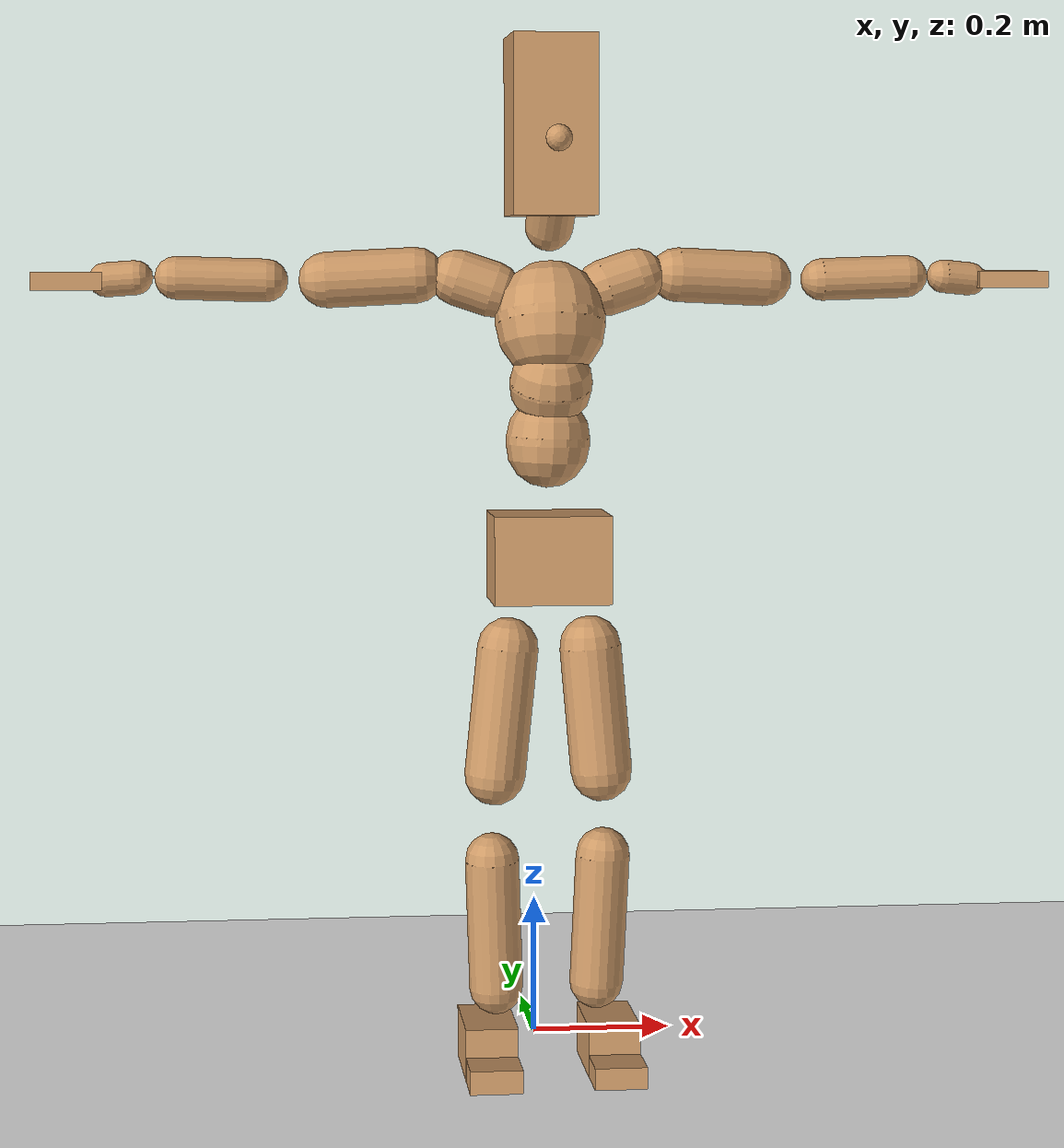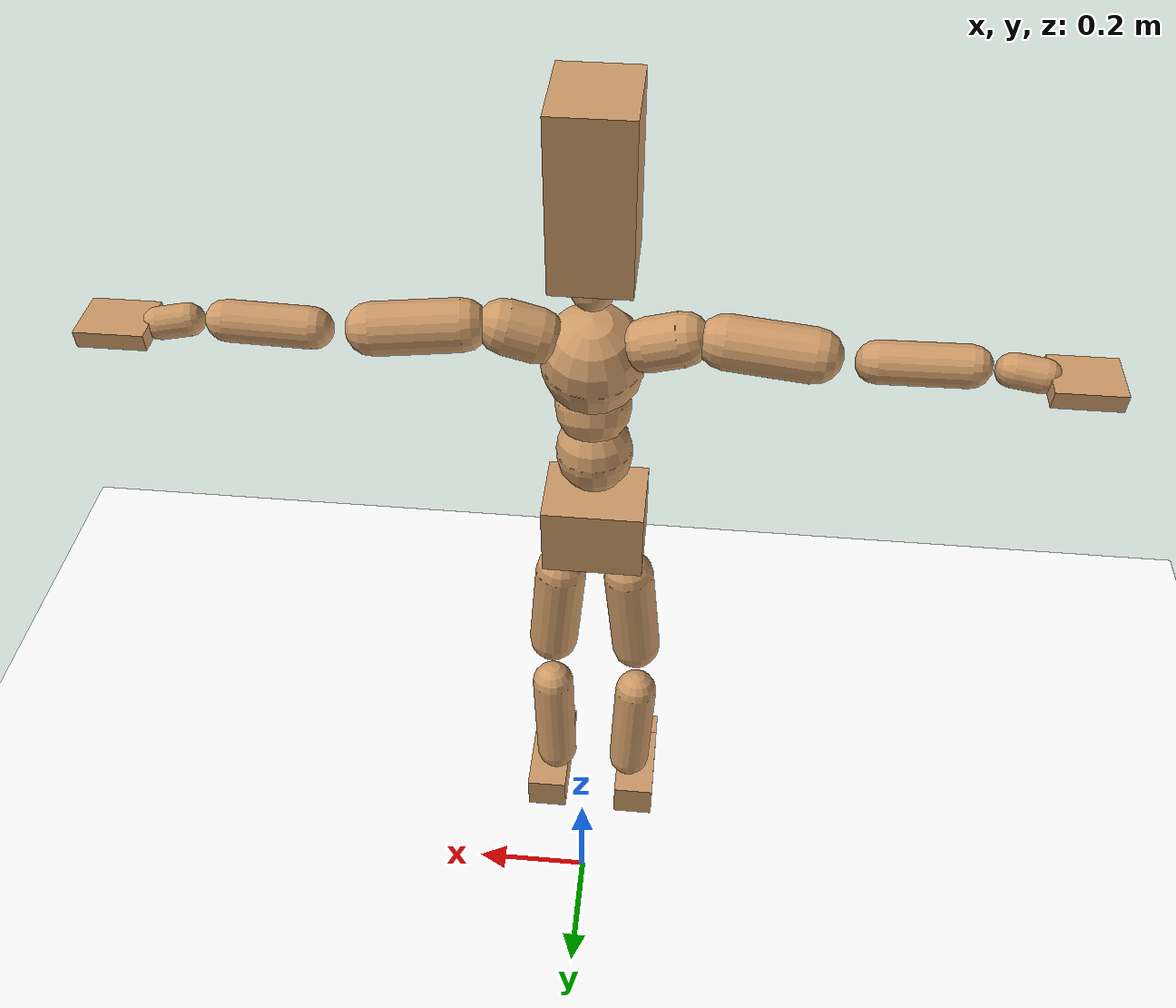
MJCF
<mujoco model="humanoid">
  <option integrator="implicitfast" />

  <visual>
    <global offwidth="1280" offheight="960" />
    <headlight active="1" ambient="0.34 0.34 0.34" diffuse="0.5 0.5 0.5" />
  </visual>

  <default>
    <joint damping="2" stiffness="2" armature="0.01" limited="true" solimplimit="0 .99 .01" />
    <geom condim="1" friction="0.7 0.005 0.0001" solimp=".99 .99 .003" solref="0.015 1" margin="0.001" rgba="0.8 0.6 .4 1" />
    <default class="smplcontact">
      <geom condim="3" friction="1. 0.005 0.0001" solref="0.015 1" solimp="0.98 0.98 0.001" priority="1" />
    </default>
    <default class="stiff_medium">
      <joint stiffness="10" />
    </default>
    <default class="stiff_medium_higher">
      <joint stiffness="50" />
    </default>
    <default class="stiff_high">
      <joint stiffness="100" />
    </default>
  </default>

  <asset>
    <texture type="skybox" builtin="gradient" rgb1="0.99 0.99 0.99" rgb2="0.608 0.828 0.892" width="100" />
    <texture builtin="flat" height="1278" mark="cross" markrgb="1 1 1" name="texgeom" random="0.01" rgb1="0.8 0.6 0.4" rgb2="0.8 0.6 0.4" type="cube" width="127" />
    <texture name="texplane" type="2d" builtin="checker" markrgb="1 1 1" rgb1="0.756 0.772 0.76" rgb2="0.6 0.6 0.6" width="100" height="100" />
    <material name="MatPlane" reflectance="0.5" texture="texplane" texrepeat="1 1" texuniform="true" />
    <material name="geom" texture="texgeom" texuniform="true" />
  </asset>

  <worldbody>
    <light name="tracking_light" pos="0 0 7" dir="0 0 -1" directional="true" cutoff="100" exponent="1" diffuse="1 1 1" specular="0.1 0.1 0.1" mode="trackcom" />
    <camera name="back" pos="0 3 2.4" xyaxes="-1 0 0 0 -1 2" mode="trackcom" />
    <camera name="side" pos="-3 0 2.4" xyaxes="0 -1 0 1 0 2" mode="trackcom" />
    <camera name="front_side" pos="-2.8 -2.8 0.8" xyaxes="0.5 -0.5 0 0.1 0.1 1" mode="trackcom" />
    <geom condim="3" name="floor" pos="0 0 0" rgba="1 1 1 1" size="100 100 .2" type="plane" material="MatPlane" />
    <body name="Pelvis" pos="-0.0018 -0.2233 0.736156" euler="90 0 0">
      <site name="Pelvis" size="0.01" />
      <freejoint name="Pelvis" />
      <geom type="box" pos="0 -0.0102491 -0.00418165" size="0.0812761 0.0611555 0.0631049" quat="1.0000 0.0000 0.0000 0.0000" density="3165.830099" name="Pelvis" />
      <body name="L_Hip" pos="0.0528409 -0.0774185 -0.00517004">
        <joint name="L_Hip_x" type="hinge" pos="0 0 0" axis="1 0 0" stiffness="10" range="-160.0 22.92" class="stiff_medium" damping="15" />
        <joint name="L_Hip_y" type="hinge" pos="0 0 0" axis="0 1 0" stiffness="10" range="-70.0 70.0" class="stiff_medium" damping="10" />
        <joint name="L_Hip_z" type="hinge" pos="0 0 0" axis="0 0 1" stiffness="10" range="-28.65 90.0" class="stiff_medium" damping="10" />
        <geom type="capsule" density="2040.816327" fromto="0.00538281 -0.0585721 -0.000702801 0.0213924 -0.234443 -0.00281138" size="0.0431115" name="L_Hip" />
        <body name="L_Knee" pos="0.0267752 -0.293015 -0.00351418">
          <joint name="L_Knee_x" type="hinge" pos="0 0 0" axis="1 0 0" range="-5.16 171.89" damping="8" />
          <joint name="L_Knee_y" type="hinge" pos="0 0 0" axis="0 1 0" range="-4.58 6.88" damping="8" />
          <joint name="L_Knee_z" type="hinge" pos="0 0 0" axis="0 0 1" range="-6.88 4.58" damping="8" />
          <geom type="capsule" density="1234.567901" fromto="-0.00211122 -0.0621633 -0.00679956 -0.00851504 -0.248655 -0.0273386" size="0.0379241" name="L_Knee" />
          <body name="L_Ankle" pos="-0.0106263 -0.310818 -0.0341382">
            <joint name="L_Ankle_x" type="hinge" pos="0 0 0" axis="1 0 0" range="-45.84 45.84" class="stiff_medium" damping="6" />
            <joint name="L_Ankle_y" type="hinge" pos="0 0 0" axis="0 1 0" range="-74.48 22.92" class="stiff_medium" damping="3" />
            <joint name="L_Ankle_z" type="hinge" pos="0 0 0" axis="0 0 1" range="-4.58 4.58" class="stiff_medium" damping="6" />
            <geom type="box" pos="0.017715 -0.0181712 0.0206018" size="0.0367225 0.0352779 0.0723617" quat="1.0000 0.0000 0.0000 0.0000" density="449.071558" name="L_Ankle" class="smplcontact" />
            <body name="L_Toe" pos="0.0200719 -0.0424247 0.101562">
              <joint name="L_Toe_x" type="hinge" pos="0 0 0" axis="1 0 0" range="-91.67 22.92" />
              <joint name="L_Toe_y" type="hinge" pos="0 0 0" axis="0 1 0" range="-4.58 4.58" />
              <joint name="L_Toe_z" type="hinge" pos="0 0 0" axis="0 0 1" range="-4.58 4.58" />
              <geom type="box" pos="-0.0022809 0.00418165 0.0211126" size="0.0363423 0.015206 0.0422252" quat="1.0000 0.0000 0.0000 0.0000" density="423.206892" name="L_Toe" class="smplcontact" />
            </body>
          </body>
        </body>
      </body>
      <body name="R_Hip" pos="-0.0514723 -0.0766562 -0.00326929">
        <joint name="R_Hip_x" type="hinge" pos="0 0 0" axis="1 0 0" stiffness="10" range="-160.0 22.92" class="stiff_medium" damping="15" />
        <joint name="R_Hip_y" type="hinge" pos="0 0 0" axis="0 1 0" stiffness="10" range="-70.0 70.0" class="stiff_medium" damping="10" />
        <joint name="R_Hip_z" type="hinge" pos="0 0 0" axis="0 0 1" stiffness="10" range="-90.0 28.65" class="stiff_medium" damping="10" />
        <geom type="capsule" density="2040.816327" fromto="-0.00600781 -0.0597436 -0.001403 -0.0238917 -0.239051 -0.00554206" size="0.0424806" name="R_Hip" />
        <body name="R_Knee" pos="-0.0298995 -0.298794 -0.00694507">
          <joint name="R_Knee_x" type="hinge" pos="0 0 0" axis="1 0 0" range="-5.16 171.89" damping="8" />
          <joint name="R_Knee_y" type="hinge" pos="0 0 0" axis="0 1 0" range="-6.88 4.58" damping="8" />
          <joint name="R_Knee_z" type="hinge" pos="0 0 0" axis="0 0 1" range="-4.58 6.88" damping="8" />
          <geom type="capsule" density="1234.567901" fromto="0.00249386 -0.0622428 -0.00663314 0.00983482 -0.248891 -0.0263913" size="0.0379241" name="R_Knee" />
          <body name="R_Ankle" pos="0.0123287 -0.311134 -0.0330244">
            <joint name="R_Ankle_x" type="hinge" pos="0 0 0" axis="1 0 0" range="-45.84 45.84" class="stiff_medium" damping="6" />
            <joint name="R_Ankle_y" type="hinge" pos="0 0 0" axis="0 1 0" range="-22.92 74.48" class="stiff_medium" damping="3" />
            <joint name="R_Ankle_z" type="hinge" pos="0 0 0" axis="0 0 1" range="-4.58 4.58" class="stiff_medium" damping="6" />
            <geom type="box" pos="-0.0161184 -0.0132292 0.0217936" size="0.0367225 0.0363423 0.0736387" quat="1.0000 0.0000 0.0000 0.0000" density="434.700981" name="R_Ankle" class="smplcontact" />
            <body name="R_Toe" pos="-0.0193116 -0.0365704 0.104967">
              <joint name="R_Toe_x" type="hinge" pos="0 0 0" axis="1 0 0" range="-91.67 22.92" />
              <joint name="R_Toe_y" type="hinge" pos="0 0 0" axis="0 1 0" range="-4.58 4.58" />
              <joint name="R_Toe_z" type="hinge" pos="0 0 0" axis="0 0 1" range="-4.58 4.58" />
              <geom type="box" pos="0.00319326 0.00342135 0.0193248" size="0.0364184 0.0164225 0.0419698" quat="1.0000 0.0000 0.0000 0.0000" density="407.384095" name="R_Toe" class="smplcontact" />
            </body>
          </body>
        </body>
      </body>
      <body name="Torso" pos="-0.00190075 0.0923262 -0.0203">
        <joint name="Torso_x" type="hinge" pos="0 0 0" axis="1 0 0" range="-25.78 57.3" class="stiff_medium" damping="15" />
        <joint name="Torso_y" type="hinge" pos="0 0 0" axis="0 1 0" range="-57.3 57.3" class="stiff_high" damping="20" />
        <joint name="Torso_z" type="hinge" pos="0 0 0" axis="0 0 1" range="-34.38 34.38" class="stiff_high" damping="20" />
        <geom type="capsule" density="2040.816327" fromto="0.0021089 0.0518156 0.000421781 0.00253501 0.0633205 0.000507002" size="0.0588208" name="Torso" />
        <body name="Spine" pos="0.00464424 0.115221 0.000928848">
          <joint name="Spine_x" type="hinge" pos="0 0 0" axis="1 0 0" stiffness="10" range="-25.78 57.3" class="stiff_medium" damping="15" />
          <joint name="Spine_y" type="hinge" pos="0 0 0" axis="0 1 0" stiffness="10" range="-57.3 57.3" class="stiff_high" damping="8" />
          <joint name="Spine_z" type="hinge" pos="0 0 0" axis="0 0 1" stiffness="20" range="-34.38 34.38" class="stiff_high" damping="12" />
          <geom type="capsule" density="2040.816327" fromto="0.000574467 0.0202736 0.00973482 0.000659688 0.0247903 0.0119506" size="0.05775" name="Spine" />
          <body name="Chest" pos="0.00123416 0.0450639 0.0216854">
            <joint name="Chest_x" type="hinge" pos="0 0 0" axis="1 0 0" stiffness="10" range="-25.78 57.3" class="stiff_medium" damping="15" />
            <joint name="Chest_y" type="hinge" pos="0 0 0" axis="0 1 0" stiffness="10" range="-57.3 57.3" class="stiff_high" damping="8" />
            <joint name="Chest_z" type="hinge" pos="0 0 0" axis="0 0 1" stiffness="20" range="-34.38 34.38" class="stiff_high" damping="12" />
            <geom type="capsule" density="2040.816327" fromto="-0.000727804 0.0581147 -0.0147692 -0.000813026 0.0709832 -0.0180928" size="0.076643" name="Chest" />
            <body name="Neck" pos="-0.00226368 0.182029 -0.0375708">
              <joint name="Neck_x" type="hinge" pos="0 0 0" axis="1 0 0" range="-28.65 57.3" class="stiff_medium_higher" damping="10" />
              <joint name="Neck_y" type="hinge" pos="0 0 0" axis="0 1 0" range="-40.11 40.11" class="stiff_medium_higher" damping="10" />
              <joint name="Neck_z" type="hinge" pos="0 0 0" axis="0 0 1" range="-40.11 40.11" class="stiff_medium_higher" damping="10" />
              <geom type="capsule" density="1000" fromto="0.000854322 0.0110684 0.00876663 0.0034934 0.0442696 0.0349871" size="0.0333148" name="Neck" />
              <body name="Head" pos="0.00442383 0.0553342 0.0436743">
                <joint name="Head_x" type="hinge" pos="0 0 0" axis="1 0 0" range="-28.65 57.3" class="stiff_medium_higher" damping="2" />
                <joint name="Head_y" type="hinge" pos="0 0 0" axis="0 1 0" range="-40.11 40.11" class="stiff_medium_higher" damping="2" />
                <joint name="Head_z" type="hinge" pos="0 0 0" axis="0 0 1" range="-40.11 40.11" class="stiff_medium_higher" damping="2" />
                <geom type="box" pos="-0.00399588 0.0928485 -0.0110362" size="0.0576548 0.122314 0.0723064" quat="1.0000 0.0000 0.0000 0.0000" density="1018.069894" name="Head" />
                <geom type="capsule" name="nose" size="0.019028 0.009514" pos="0 0.074194 0.04757" quat="1 0 0 0" mass="0" contype="0" conaffinity="0" />
              </body>
            </body>
            <body name="L_Thorax" pos="0.0602037 0.103728 -0.0288311">
              <joint name="L_Thorax_x" type="hinge" pos="0 0 0" axis="1 0 0" range="-10.89 4.58" class="stiff_medium_higher" damping="20" />
              <joint name="L_Thorax_y" type="hinge" pos="0 0 0" axis="0 1 0" range="-28.65 17.19" class="stiff_medium_higher" damping="20" />
              <joint name="L_Thorax_z" type="hinge" pos="0 0 0" axis="0 0 1" range="-31.51 40.11" class="stiff_medium_higher" damping="20" />
              <geom type="capsule" density="1000" fromto="0.0153238 0.00513601 -0.00151267 0.0612946 0.0205438 -0.00597504" size="0.0393772" name="L_Thorax" />
              <body name="L_Shoulder" pos="0.0766184 0.0256798 -0.00748771">
                <joint name="L_Shoulder_x" type="hinge" pos="0 0 0" axis="1 0 0" range="-97.4 97.4" class="stiff_medium" damping="6" />
                <joint name="L_Shoulder_y" type="hinge" pos="0 0 0" axis="0 1 0" range="-108.86 80.21" class="stiff_medium" damping="6" />
                <joint name="L_Shoulder_z" type="hinge" pos="0 0 0" axis="0 0 1" range="-97.4 85.94" class="stiff_medium" damping="6" />
                <geom type="capsule" density="1000" fromto="0.0420241 -0.00209959 -0.00445313 0.168176 -0.00825336 -0.0178133" size="0.0375756" name="L_Shoulder" />
                <body name="L_Elbow" pos="0.210201 -0.010353 -0.0222664">
                  <joint name="L_Elbow_x" type="hinge" pos="0 0 0" axis="1 0 0" range="-17.19 4.58" damping="5" />
                  <joint name="L_Elbow_y" type="hinge" pos="0 0 0" axis="0 1 0" range="-180.0 17.19" damping="5" />
                  <joint name="L_Elbow_z" type="hinge" pos="0 0 0" axis="0 0 1" range="-100.84 4.58" damping="5" />
                  <geom type="capsule" density="1000" fromto="0.0403234 0.00145727 -0.000164679 0.161456 0.00582969 -0.000731474" size="0.0294354" name="L_Elbow" />
                  <body name="L_Wrist" pos="0.201779 0.00728696 -0.000968833">
                    <joint name="L_Wrist_x" type="hinge" pos="0 0 0" axis="1 0 0" range="-180.0 22.92" />
                    <joint name="L_Wrist_y" type="hinge" pos="0 0 0" axis="0 1 0" range="-17.19 17.19" />
                    <joint name="L_Wrist_z" type="hinge" pos="0 0 0" axis="0 0 1" range="-22.92 22.92" />
                    <geom type="capsule" density="1000" fromto="0.0136028 -0.00129827 -0.00242907 0.0544121 -0.00526583 -0.00971644" size="0.0231122" name="L_Wrist" class="smplcontact" />
                    <body name="L_Hand" pos="0.0680142 -0.00663672 -0.0120727">
                      <joint name="L_Hand_x" type="hinge" pos="0 0 0" axis="1 0 0" range="-17.19 17.19" />
                      <joint name="L_Hand_y" type="hinge" pos="0 0 0" axis="0 1 0" range="-51.57 51.57" />
                      <joint name="L_Hand_z" type="hinge" pos="0 0 0" axis="0 0 1" range="-91.67 91.67" />
                      <geom type="box" pos="0.0417586 0.0007603 -0.00440974" size="0.0495512 0.0120127 0.0409041" quat="1.0000 0.0000 0.0000 0.0000" density="400.552564" name="L_Hand" class="smplcontact" />
                    </body>
                  </body>
                </body>
              </body>
            </body>
            <body name="R_Thorax" pos="-0.0626389 0.101455 -0.0322589">
              <joint name="R_Thorax_x" type="hinge" pos="0 0 0" axis="1 0 0" range="-10.89 4.58" class="stiff_medium_higher" damping="20" />
              <joint name="R_Thorax_y" type="hinge" pos="0 0 0" axis="0 1 0" range="-17.19 28.65" class="stiff_medium_higher" damping="20" />
              <joint name="R_Thorax_z" type="hinge" pos="0 0 0" axis="0 0 1" range="-40.11 31.51" class="stiff_medium_higher" damping="20" />
              <geom type="capsule" density="1000" fromto="-0.0161653 0.00547263 -0.00151837 -0.0646619 0.0218908 -0.00614912" size="0.0386214" name="R_Thorax" />
              <body name="R_Shoulder" pos="-0.0808298 0.0274398 -0.00766774">
                <joint name="R_Shoulder_x" type="hinge" pos="0 0 0" axis="1 0 0" range="-97.4 97.4" class="stiff_medium" damping="6" />
                <joint name="R_Shoulder_y" type="hinge" pos="0 0 0" axis="0 1 0" range="-80.21 108.86" class="stiff_medium" damping="6" />
                <joint name="R_Shoulder_z" type="hinge" pos="0 0 0" axis="0 0 1" range="-85.94 97.4" class="stiff_medium" damping="6" />
                <geom type="capsule" density="1000" fromto="-0.0410526 -0.00218318 -0.00347855 -0.164371 -0.00866083 -0.0138428" size="0.0385931" name="R_Shoulder" />
                <body name="R_Elbow" pos="-0.205423 -0.0107713 -0.0173213">
                  <joint name="R_Elbow_x" type="hinge" pos="0 0 0" axis="1 0 0" range="-17.19 4.58" damping="5" />
                  <joint name="R_Elbow_y" type="hinge" pos="0 0 0" axis="0 1 0" range="-17.19 180.0" damping="5" />
                  <joint name="R_Elbow_z" type="hinge" pos="0 0 0" axis="0 0 1" range="-4.58 100.84" damping="5" />
                  <geom type="capsule" density="1000" fromto="-0.0413762 0.00129017 -0.0008908 -0.165342 0.00501483 -0.00356283" size="0.0296534" name="R_Elbow" />
                  <body name="R_Wrist" pos="-0.206719 0.00630501 -0.00452632">
                    <joint name="R_Wrist_x" type="hinge" pos="0 0 0" axis="1 0 0" range="-180.0 22.92" />
                    <joint name="R_Wrist_y" type="hinge" pos="0 0 0" axis="0 1 0" range="-17.19 17.19" />
                    <joint name="R_Wrist_z" type="hinge" pos="0 0 0" axis="0 0 1" range="-22.92 22.92" />
                    <geom type="capsule" density="1000" fromto="-0.0136842 -0.000974224 -0.00169731 -0.0548174 -0.00397014 -0.00671749" size="0.0236937" name="R_Wrist" class="smplcontact" />
                    <body name="R_Hand" pos="-0.0685006 -0.00494429 -0.008342">
                      <joint name="R_Hand_x" type="hinge" pos="0 0 0" axis="1 0 0" range="-17.19 17.19" />
                      <joint name="R_Hand_y" type="hinge" pos="0 0 0" axis="0 1 0" range="-51.57 51.57" />
                      <joint name="R_Hand_z" type="hinge" pos="0 0 0" axis="0 0 1" range="-91.67 91.67" />
                      <geom type="box" pos="-0.0391328 -0.00068427 -0.00600637" size="0.048196 0.0124689 0.0415124" quat="1.0000 0.0000 0.0000 0.0000" density="403.679611" name="R_Hand" class="smplcontact" />
                    </body>
                  </body>
                </body>
              </body>
            </body>
          </body>
        </body>
      </body>
    </body>
  </worldbody>
  <actuator>
    <general name="L_Hip_x" joint="L_Hip_x" biastype="affine" gainprm="287.33006409732246" biasprm="-215.3247604770444 -180 -2.0" ctrllimited="true" ctrlrange="-1 1" forcerange="-360 360" />
    <general name="L_Hip_y" joint="L_Hip_y" biastype="affine" gainprm="219.9114857512855" biasprm="0.0 -180 -2.0" ctrllimited="true" ctrlrange="-1 1" forcerange="-360 360" />
    <general name="L_Hip_z" joint="L_Hip_z" biastype="affine" gainprm="186.3749841742145" biasprm="96.3683546488669 -180 -2.0" ctrllimited="true" ctrlrange="-1 1" forcerange="-360 360" />
    <general name="L_Knee_x" joint="L_Knee_x" biastype="affine" gainprm="278.10948965903646" biasprm="261.8988715665131 -180 -2.0" ctrllimited="true" ctrlrange="-1 1" forcerange="-360 360" />
    <general name="L_Knee_y" joint="L_Knee_y" biastype="affine" gainprm="18.001325905069514" biasprm="3.612831551628262 -180 -2.0" ctrllimited="true" ctrlrange="-1 1" forcerange="-360 360" />
    <general name="L_Knee_z" joint="L_Knee_z" biastype="affine" gainprm="18.001325905069514" biasprm="-3.612831551628262 -180 -2.0" ctrllimited="true" ctrlrange="-1 1" forcerange="-360 360" />
    <general name="L_Ankle_x" joint="L_Ankle_x" biastype="affine" gainprm="72.00530362027807" biasprm="0.0 -90 -2.0" ctrllimited="true" ctrlrange="-1 1" forcerange="-180 180" />
    <general name="L_Ankle_y" joint="L_Ankle_y" biastype="affine" gainprm="76.49778111491148" biasprm="-40.49512930477244 -90 -2.0" ctrllimited="true" ctrlrange="-1 1" forcerange="-180 180" />
    <general name="L_Ankle_z" joint="L_Ankle_z" biastype="affine" gainprm="7.1942471767206255" biasprm="0.0 -90 -2.0" ctrllimited="true" ctrlrange="-1 1" forcerange="-180 180" />
    <general name="L_Toe_x" joint="L_Toe_x" biastype="affine" gainprm="71.99902043497087" biasprm="-43.19689898685965 -72 -0.8" ctrllimited="true" ctrlrange="-1 1" forcerange="-144 144" />
    <general name="L_Toe_y" joint="L_Toe_y" biastype="affine" gainprm="5.755397741376501" biasprm="0.0 -72 -0.8" ctrllimited="true" ctrlrange="-1 1" forcerange="-144 144" />
    <general name="L_Toe_z" joint="L_Toe_z" biastype="affine" gainprm="5.755397741376501" biasprm="0.0 -72 -0.8" ctrllimited="true" ctrlrange="-1 1" forcerange="-144 144" />
    <general name="R_Hip_x" joint="R_Hip_x" biastype="affine" gainprm="287.33006409732246" biasprm="-215.3247604770444 -180 -2.0" ctrllimited="true" ctrlrange="-1 1" forcerange="-360 360" />
    <general name="R_Hip_y" joint="R_Hip_y" biastype="affine" gainprm="219.9114857512855" biasprm="0.0 -180 -2.0" ctrllimited="true" ctrlrange="-1 1" forcerange="-360 360" />
    <general name="R_Hip_z" joint="R_Hip_z" biastype="affine" gainprm="186.3749841742145" biasprm="-96.3683546488669 -180 -2.0" ctrllimited="true" ctrlrange="-1 1" forcerange="-360 360" />
    <general name="R_Knee_x" joint="R_Knee_x" biastype="affine" gainprm="278.10948965903646" biasprm="261.8988715665131 -180 -2.0" ctrllimited="true" ctrlrange="-1 1" forcerange="-360 360" />
    <general name="R_Knee_y" joint="R_Knee_y" biastype="affine" gainprm="18.001325905069514" biasprm="-3.612831551628262 -180 -2.0" ctrllimited="true" ctrlrange="-1 1" forcerange="-360 360" />
    <general name="R_Knee_z" joint="R_Knee_z" biastype="affine" gainprm="18.001325905069514" biasprm="3.612831551628262 -180 -2.0" ctrllimited="true" ctrlrange="-1 1" forcerange="-360 360" />
    <general name="R_Ankle_x" joint="R_Ankle_x" biastype="affine" gainprm="72.00530362027807" biasprm="0.0 -90 -2.0" ctrllimited="true" ctrlrange="-1 1" forcerange="-180 180" />
    <general name="R_Ankle_y" joint="R_Ankle_y" biastype="affine" gainprm="76.49778111491148" biasprm="40.49512930477244 -90 -2.0" ctrllimited="true" ctrlrange="-1 1" forcerange="-180 180" />
    <general name="R_Ankle_z" joint="R_Ankle_z" biastype="affine" gainprm="7.1942471767206255" biasprm="0.0 -90 -2.0" ctrllimited="true" ctrlrange="-1 1" forcerange="-180 180" />
    <general name="R_Toe_x" joint="R_Toe_x" biastype="affine" gainprm="71.99902043497087" biasprm="-43.19689898685965 -72 -0.8" ctrllimited="true" ctrlrange="-1 1" forcerange="-144 144" />
    <general name="R_Toe_y" joint="R_Toe_y" biastype="affine" gainprm="5.755397741376501" biasprm="0.0 -72 -0.8" ctrllimited="true" ctrlrange="-1 1" forcerange="-144 144" />
    <general name="R_Toe_z" joint="R_Toe_z" biastype="affine" gainprm="5.755397741376501" biasprm="0.0 -72 -0.8" ctrllimited="true" ctrlrange="-1 1" forcerange="-144 144" />
    <general name="Torso_x" joint="Torso_x" biastype="affine" gainprm="174.00234510682668" biasprm="66.0153336274335 -240 -4.0" ctrllimited="true" ctrlrange="-1 1" forcerange="-360 360" />
    <general name="Torso_y" joint="Torso_y" biastype="affine" gainprm="240.0176787342602" biasprm="0.0 -240 -4.0" ctrllimited="true" ctrlrange="-1 1" forcerange="-360 360" />
    <general name="Torso_z" joint="Torso_z" biastype="affine" gainprm="144.01060724055614" biasprm="0.0 -240 -4.0" ctrllimited="true" ctrlrange="-1 1" forcerange="-360 360" />
    <general name="Spine_x" joint="Spine_x" biastype="affine" gainprm="174.00234510682668" biasprm="66.0153336274335 -240 -4.0" ctrllimited="true" ctrlrange="-1 1" forcerange="-360 360" />
    <general name="Spine_y" joint="Spine_y" biastype="affine" gainprm="240.0176787342602" biasprm="0.0 -240 -4.0" ctrllimited="true" ctrlrange="-1 1" forcerange="-360 360" />
    <general name="Spine_z" joint="Spine_z" biastype="affine" gainprm="144.01060724055614" biasprm="0.0 -240 -4.0" ctrllimited="true" ctrlrange="-1 1" forcerange="-360 360" />
    <general name="Chest_x" joint="Chest_x" biastype="affine" gainprm="174.00234510682668" biasprm="66.0153336274335 -240 -4.0" ctrllimited="true" ctrlrange="-1 1" forcerange="-360 360" />
    <general name="Chest_y" joint="Chest_y" biastype="affine" gainprm="240.0176787342602" biasprm="0.0 -240 -4.0" ctrllimited="true" ctrlrange="-1 1" forcerange="-360 360" />
    <general name="Chest_z" joint="Chest_z" biastype="affine" gainprm="144.01060724055614" biasprm="0.0 -240 -4.0" ctrllimited="true" ctrlrange="-1 1" forcerange="-360 360" />
    <general name="Neck_x" joint="Neck_x" biastype="affine" gainprm="27.00198885760427" biasprm="9.000662952534757 -36 -0.8" ctrllimited="true" ctrlrange="-1 1" forcerange="-72 72" />
    <general name="Neck_y" joint="Neck_y" biastype="affine" gainprm="25.20185626709732" biasprm="0.0 -36 -0.8" ctrllimited="true" ctrlrange="-1 1" forcerange="-72 72" />
    <general name="Neck_z" joint="Neck_z" biastype="affine" gainprm="25.20185626709732" biasprm="0.0 -36 -0.8" ctrllimited="true" ctrlrange="-1 1" forcerange="-72 72" />
    <general name="Head_x" joint="Head_x" biastype="affine" gainprm="18.001325905069514" biasprm="6.000441968356505 -24 -0.8" ctrllimited="true" ctrlrange="-1 1" forcerange="-48 48" />
    <general name="Head_y" joint="Head_y" biastype="affine" gainprm="16.801237511398213" biasprm="0.0 -24 -0.8" ctrllimited="true" ctrlrange="-1 1" forcerange="-48 48" />
    <general name="Head_z" joint="Head_z" biastype="affine" gainprm="16.801237511398213" biasprm="0.0 -24 -0.8" ctrllimited="true" ctrlrange="-1 1" forcerange="-48 48" />
    <general name="L_Thorax_x" joint="L_Thorax_x" biastype="affine" gainprm="16.200146117011364" biasprm="-6.6078165480505335 -120 -1.6" ctrllimited="true" ctrlrange="-1 1" forcerange="-240 240" />
    <general name="L_Thorax_y" joint="L_Thorax_y" biastype="affine" gainprm="48.00353574685204" biasprm="-12.00088393671301 -120 -1.6" ctrllimited="true" ctrlrange="-1 1" forcerange="-240 240" />
    <general name="L_Thorax_z" joint="L_Thorax_z" biastype="affine" gainprm="75.00028861670033" biasprm="9.00589894029074 -120 -1.6" ctrllimited="true" ctrlrange="-1 1" forcerange="-240 240" />
    <general name="L_Shoulder_x" joint="L_Shoulder_x" biastype="affine" gainprm="81.5976331892389" biasprm="0.0 -48 -1.6" ctrllimited="true" ctrlrange="-1 1" forcerange="-96 96" />
    <general name="L_Shoulder_y" joint="L_Shoulder_y" biastype="affine" gainprm="79.19745640189629" biasprm="-12.00088393671301 -48 -1.6" ctrllimited="true" ctrlrange="-1 1" forcerange="-96 96" />
    <general name="L_Shoulder_z" joint="L_Shoulder_z" biastype="affine" gainprm="76.79727961455369" biasprm="-4.800353574685214 -48 -1.6" ctrllimited="true" ctrlrange="-1 1" forcerange="-96 96" />
    <general name="L_Elbow_x" joint="L_Elbow_x" biastype="affine" gainprm="13.67849441372996" biasprm="-7.923096672353461 -72 -0.8" ctrllimited="true" ctrlrange="-1 1" forcerange="-144 144" />
    <general name="L_Elbow_y" joint="L_Elbow_y" biastype="affine" gainprm="123.89813107227425" biasprm="-102.29653998619085 -72 -0.8" ctrllimited="true" ctrlrange="-1 1" forcerange="-144 144" />
    <general name="L_Elbow_z" joint="L_Elbow_z" biastype="affine" gainprm="66.23733950828719" biasprm="-60.4819417669107 -72 -0.8" ctrllimited="true" ctrlrange="-1 1" forcerange="-144 144" />
    <general name="L_Wrist_x" joint="L_Wrist_x" biastype="affine" gainprm="21.24973270888136" biasprm="-16.449379134196157 -12 -0.8" ctrllimited="true" ctrlrange="-1 1" forcerange="-24 24" />
    <general name="L_Wrist_y" joint="L_Wrist_y" biastype="affine" gainprm="3.6002651810139037" biasprm="0.0 -12 -0.8" ctrllimited="true" ctrlrange="-1 1" forcerange="-24 24" />
    <general name="L_Wrist_z" joint="L_Wrist_z" biastype="affine" gainprm="4.800353574685205" biasprm="0.0 -12 -0.8" ctrllimited="true" ctrlrange="-1 1" forcerange="-24 24" />
    <general name="L_Hand_x" joint="L_Hand_x" biastype="affine" gainprm="3.6002651810139037" biasprm="0.0 -12 -0.8" ctrllimited="true" ctrlrange="-1 1" forcerange="-24 24" />
    <general name="L_Hand_y" joint="L_Hand_y" biastype="affine" gainprm="10.800795543041708" biasprm="0.0 -12 -0.8" ctrllimited="true" ctrlrange="-1 1" forcerange="-24 24" />
    <general name="L_Hand_z" joint="L_Hand_z" biastype="affine" gainprm="19.199319903638422" biasprm="0.0 -12 -0.8" ctrllimited="true" ctrlrange="-1 1" forcerange="-24 24" />
    <general name="R_Thorax_x" joint="R_Thorax_x" biastype="affine" gainprm="16.200146117011364" biasprm="-6.6078165480505335 -120 -1.6" ctrllimited="true" ctrlrange="-1 1" forcerange="-240 240" />
    <general name="R_Thorax_y" joint="R_Thorax_y" biastype="affine" gainprm="48.00353574685204" biasprm="12.000883936713002 -120 -1.6" ctrllimited="true" ctrlrange="-1 1" forcerange="-240 240" />
    <general name="R_Thorax_z" joint="R_Thorax_z" biastype="affine" gainprm="75.00028861670033" biasprm="-9.00589894029074 -120 -1.6" ctrllimited="true" ctrlrange="-1 1" forcerange="-240 240" />
    <general name="R_Shoulder_x" joint="R_Shoulder_x" biastype="affine" gainprm="81.5976331892389" biasprm="0.0 -48 -1.6" ctrllimited="true" ctrlrange="-1 1" forcerange="-96 96" />
    <general name="R_Shoulder_y" joint="R_Shoulder_y" biastype="affine" gainprm="79.19745640189629" biasprm="12.00088393671301 -48 -1.6" ctrllimited="true" ctrlrange="-1 1" forcerange="-96 96" />
    <general name="R_Shoulder_z" joint="R_Shoulder_z" biastype="affine" gainprm="76.79727961455369" biasprm="4.800353574685204 -48 -1.6" ctrllimited="true" ctrlrange="-1 1" forcerange="-96 96" />
    <general name="R_Elbow_x" joint="R_Elbow_x" biastype="affine" gainprm="13.67849441372996" biasprm="-7.923096672353461 -72 -0.8" ctrllimited="true" ctrlrange="-1 1" forcerange="-144 144" />
    <general name="R_Elbow_y" joint="R_Elbow_y" biastype="affine" gainprm="123.89813107227425" biasprm="102.29653998619085 -72 -0.8" ctrllimited="true" ctrlrange="-1 1" forcerange="-144 144" />
    <general name="R_Elbow_z" joint="R_Elbow_z" biastype="affine" gainprm="66.23733950828719" biasprm="60.481941766910694 -72 -0.8" ctrllimited="true" ctrlrange="-1 1" forcerange="-144 144" />
    <general name="R_Wrist_x" joint="R_Wrist_x" biastype="affine" gainprm="21.24973270888136" biasprm="-16.449379134196157 -12 -0.8" ctrllimited="true" ctrlrange="-1 1" forcerange="-24 24" />
    <general name="R_Wrist_y" joint="R_Wrist_y" biastype="affine" gainprm="3.6002651810139037" biasprm="0.0 -12 -0.8" ctrllimited="true" ctrlrange="-1 1" forcerange="-24 24" />
    <general name="R_Wrist_z" joint="R_Wrist_z" biastype="affine" gainprm="4.800353574685205" biasprm="0.0 -12 -0.8" ctrllimited="true" ctrlrange="-1 1" forcerange="-24 24" />
    <general name="R_Hand_x" joint="R_Hand_x" biastype="affine" gainprm="3.6002651810139037" biasprm="0.0 -12 -0.8" ctrllimited="true" ctrlrange="-1 1" forcerange="-24 24" />
    <general name="R_Hand_y" joint="R_Hand_y" biastype="affine" gainprm="10.800795543041708" biasprm="0.0 -12 -0.8" ctrllimited="true" ctrlrange="-1 1" forcerange="-24 24" />
    <general name="R_Hand_z" joint="R_Hand_z" biastype="affine" gainprm="19.199319903638422" biasprm="0.0 -12 -0.8" ctrllimited="true" ctrlrange="-1 1" forcerange="-24 24" />
  </actuator>
  <contact>
    <exclude body1="Torso" body2="Chest" />
    <exclude body1="Head" body2="Chest" />
    <exclude body1="R_Knee" body2="R_Toe" />
    <exclude body1="R_Knee" body2="L_Ankle" />
    <exclude body1="R_Knee" body2="L_Toe" />
    <exclude body1="L_Knee" body2="L_Toe" />
    <exclude body1="L_Knee" body2="R_Ankle" />
    <exclude body1="L_Knee" body2="R_Toe" />
    <exclude body1="L_Shoulder" body2="Chest" />
    <exclude body1="R_Shoulder" body2="Chest" />
  </contact>
  <sensor>
    <framelinvel name="sensor_Pelvis_framelinvel" objtype="xbody" objname="Pelvis" />
    <framelinvel name="sensor_L_Hip_framelinvel" objtype="xbody" objname="L_Hip" />
    <framelinvel name="sensor_L_Knee_framelinvel" objtype="xbody" objname="L_Knee" />
    <framelinvel name="sensor_L_Ankle_framelinvel" objtype="xbody" objname="L_Ankle" />
    <framelinvel name="sensor_L_Toe_framelinvel" objtype="xbody" objname="L_Toe" />
    <framelinvel name="sensor_R_Hip_framelinvel" objtype="xbody" objname="R_Hip" />
    <framelinvel name="sensor_R_Knee_framelinvel" objtype="xbody" objname="R_Knee" />
    <framelinvel name="sensor_R_Ankle_framelinvel" objtype="xbody" objname="R_Ankle" />
    <framelinvel name="sensor_R_Toe_framelinvel" objtype="xbody" objname="R_Toe" />
    <framelinvel name="sensor_Torso_framelinvel" objtype="xbody" objname="Torso" />
    <framelinvel name="sensor_Spine_framelinvel" objtype="xbody" objname="Spine" />
    <framelinvel name="sensor_Chest_framelinvel" objtype="xbody" objname="Chest" />
    <framelinvel name="sensor_Neck_framelinvel" objtype="xbody" objname="Neck" />
    <framelinvel name="sensor_Head_framelinvel" objtype="xbody" objname="Head" />
    <framelinvel name="sensor_L_Thorax_framelinvel" objtype="xbody" objname="L_Thorax" />
    <framelinvel name="sensor_L_Shoulder_framelinvel" objtype="xbody" objname="L_Shoulder" />
    <framelinvel name="sensor_L_Elbow_framelinvel" objtype="xbody" objname="L_Elbow" />
    <framelinvel name="sensor_L_Wrist_framelinvel" objtype="xbody" objname="L_Wrist" />
    <framelinvel name="sensor_L_Hand_framelinvel" objtype="xbody" objname="L_Hand" />
    <framelinvel name="sensor_R_Thorax_framelinvel" objtype="xbody" objname="R_Thorax" />
    <framelinvel name="sensor_R_Shoulder_framelinvel" objtype="xbody" objname="R_Shoulder" />
    <framelinvel name="sensor_R_Elbow_framelinvel" objtype="xbody" objname="R_Elbow" />
    <framelinvel name="sensor_R_Wrist_framelinvel" objtype="xbody" objname="R_Wrist" />
    <framelinvel name="sensor_R_Hand_framelinvel" objtype="xbody" objname="R_Hand" />
    <frameangvel name="sensor_Pelvis_frameangvel" objtype="xbody" objname="Pelvis" />
    <frameangvel name="sensor_L_Hip_frameangvel" objtype="xbody" objname="L_Hip" />
    <frameangvel name="sensor_L_Knee_frameangvel" objtype="xbody" objname="L_Knee" />
    <frameangvel name="sensor_L_Ankle_frameangvel" objtype="xbody" objname="L_Ankle" />
    <frameangvel name="sensor_L_Toe_frameangvel" objtype="xbody" objname="L_Toe" />
    <frameangvel name="sensor_R_Hip_frameangvel" objtype="xbody" objname="R_Hip" />
    <frameangvel name="sensor_R_Knee_frameangvel" objtype="xbody" objname="R_Knee" />
    <frameangvel name="sensor_R_Ankle_frameangvel" objtype="xbody" objname="R_Ankle" />
    <frameangvel name="sensor_R_Toe_frameangvel" objtype="xbody" objname="R_Toe" />
    <frameangvel name="sensor_Torso_frameangvel" objtype="xbody" objname="Torso" />
    <frameangvel name="sensor_Spine_frameangvel" objtype="xbody" objname="Spine" />
    <frameangvel name="sensor_Chest_frameangvel" objtype="xbody" objname="Chest" />
    <frameangvel name="sensor_Neck_frameangvel" objtype="xbody" objname="Neck" />
    <frameangvel name="sensor_Head_frameangvel" objtype="xbody" objname="Head" />
    <frameangvel name="sensor_L_Thorax_frameangvel" objtype="xbody" objname="L_Thorax" />
    <frameangvel name="sensor_L_Shoulder_frameangvel" objtype="xbody" objname="L_Shoulder" />
    <frameangvel name="sensor_L_Elbow_frameangvel" objtype="xbody" objname="L_Elbow" />
    <frameangvel name="sensor_L_Wrist_frameangvel" objtype="xbody" objname="L_Wrist" />
    <frameangvel name="sensor_L_Hand_frameangvel" objtype="xbody" objname="L_Hand" />
    <frameangvel name="sensor_R_Thorax_frameangvel" objtype="xbody" objname="R_Thorax" />
    <frameangvel name="sensor_R_Shoulder_frameangvel" objtype="xbody" objname="R_Shoulder" />
    <frameangvel name="sensor_R_Elbow_frameangvel" objtype="xbody" objname="R_Elbow" />
    <frameangvel name="sensor_R_Wrist_frameangvel" objtype="xbody" objname="R_Wrist" />
    <frameangvel name="sensor_R_Hand_frameangvel" objtype="xbody" objname="R_Hand" />
    <subtreelinvel name="Chest_subtreelinvel" body="Chest" />
    <gyro name="Pelvis_gyro" site="Pelvis" />
  </sensor>
</mujoco>
